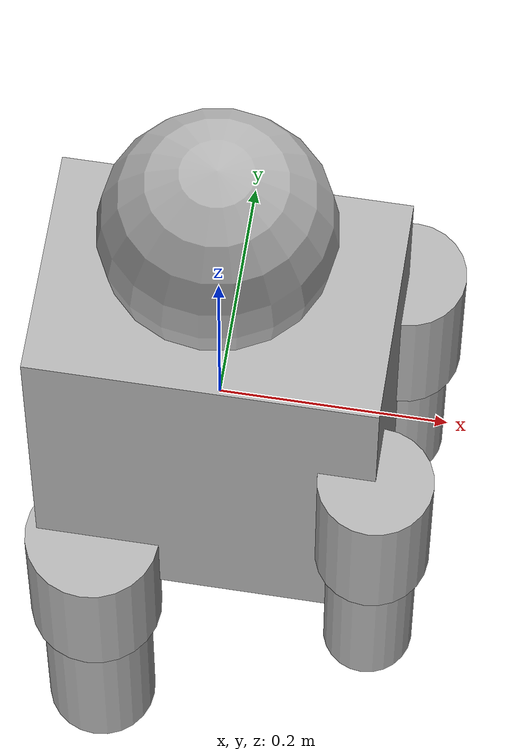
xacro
<?xml version="1.0"?>
<robot xmlns:xacro="http://www.ros.org/wiki/xacro" name="humanoid">

  <xacro:property name="M_PI" value="3.1415926535897931" />

  <!-- Base Link -->
  <link name="base_link">
    <visual>
      <geometry>
        <box size="0.3 0.2 0.4"/>
      </geometry>
      <material name="light_grey">
        <color rgba="0.7 0.7 0.7 1.0"/>
      </material>
    </visual>
    <collision>
      <geometry>
        <box size="0.3 0.2 0.4"/>
      </geometry>
    </collision>
    <inertial>
      <mass value="10.0" />
      <origin xyz="0 0 0" />
      <inertia ixx="0.1" ixy="0.0" ixz="0.0" iyy="0.1" iyz="0.0" izz="0.1" />
    </inertial>
  </link>

  <!-- Head -->
  <link name="head_link">
    <visual>
      <geometry>
        <sphere radius="0.1"/>
      </geometry>
      <material name="light_grey">
        <color rgba="0.7 0.7 0.7 1.0"/>
      </material>
    </visual>
    <collision>
      <geometry>
        <sphere radius="0.1"/>
      </geometry>
    </collision>
    <inertial>
      <mass value="1.0" />
      <origin xyz="0 0 0" />
      <inertia ixx="0.001" ixy="0.0" ixz="0.0" iyy="0.001" iyz="0.0" izz="0.001" />
    </inertial>
  </link>

  <joint name="head_joint" type="fixed">
    <parent link="base_link"/>
    <child link="head_link"/>
    <origin xyz="0 0 0.3" rpy="0 0 0"/>
  </joint>

  <!-- Camera -->
  <link name="camera_link">
    <visual>
      <geometry>
        <box size="0.05 0.1 0.04"/>
      </geometry>
    </visual>
    <collision>
      <geometry>
        <box size="0.05 0.1 0.04"/>
      </geometry>
    </collision>
    <inertial>
      <mass value="0.1" />
      <origin xyz="0 0 0" />
      <inertia ixx="0.001" ixy="0.0" ixz="0.0" iyy="0.001" iyz="0.0" izz="0.001" />
    </inertial>
  </link>

  <joint name="camera_joint" type="fixed">
    <parent link="head_link"/>
    <child link="camera_link"/>
    <origin xyz="0.05 0 0" rpy="0 0 0"/>
  </joint>

  <!-- Left Arm -->
  <link name="left_shoulder_link">
    <visual>
      <geometry>
        <cylinder length="0.15" radius="0.05"/>
      </geometry>
      <material name="light_grey">
        <color rgba="0.7 0.7 0.7 1.0"/>
      </material>
    </visual>
    <collision>
      <geometry>
        <cylinder length="0.15" radius="0.05"/>
      </geometry>
    </collision>
    <inertial>
      <mass value="1.0" />
      <origin xyz="0 0 0" />
      <inertia ixx="0.002" ixy="0.0" ixz="0.0" iyy="0.002" iyz="0.0" izz="0.0005" />
    </inertial>
  </link>

  <joint name="left_shoulder_joint" type="revolute">
    <parent link="base_link"/>
    <child link="left_shoulder_link"/>
    <origin xyz="0.15 0.1 0" rpy="0 0 0"/>
    <axis xyz="0 1 0"/>
    <limit lower="${-M_PI/2}" upper="${M_PI/2}" effort="100" velocity="3.0"/>
  </joint>

  <link name="left_elbow_link">
    <visual>
      <geometry>
        <cylinder length="0.2" radius="0.04"/>
      </geometry>
      <material name="light_grey">
        <color rgba="0.7 0.7 0.7 1.0"/>
      </material>
    </visual>
    <collision>
      <geometry>
        <cylinder length="0.2" radius="0.04"/>
      </geometry>
    </collision>
    <inertial>
      <mass value="0.8" />
      <origin xyz="0 0 0" />
      <inertia ixx="0.0015" ixy="0.0" ixz="0.0" iyy="0.0015" iyz="0.0" izz="0.0003" />
    </inertial>
  </link>

  <joint name="left_elbow_joint" type="revolute">
    <parent link="left_shoulder_link"/>
    <child link="left_elbow_link"/>
    <origin xyz="0 0 -0.15" rpy="0 0 0"/>
    <axis xyz="1 0 0"/>
    <limit lower="${-M_PI/2}" upper="${M_PI/2}" effort="100" velocity="3.0"/>
  </joint>

  <!-- Right Arm -->
  <link name="right_shoulder_link">
    <visual>
      <geometry>
        <cylinder length="0.15" radius="0.05"/>
      </geometry>
      <material name="light_grey">
        <color rgba="0.7 0.7 0.7 1.0"/>
      </material>
    </visual>
    <collision>
      <geometry>
        <cylinder length="0.15" radius="0.05"/>
      </geometry>
    </collision>
    <inertial>
      <mass value="1.0" />
      <origin xyz="0 0 0" />
      <inertia ixx="0.002" ixy="0.0" ixz="0.0" iyy="0.002" iyz="0.0" izz="0.0005" />
    </inertial>
  </link>

  <joint name="right_shoulder_joint" type="revolute">
    <parent link="base_link"/>
    <child link="right_shoulder_link"/>
    <origin xyz="0.15 -0.1 0" rpy="0 0 0"/>
    <axis xyz="0 1 0"/>
    <limit lower="${-M_PI/2}" upper="${M_PI/2}" effort="100" velocity="3.0"/>
  </joint>

  <link name="right_elbow_link">
    <visual>
      <geometry>
        <cylinder length="0.2" radius="0.04"/>
      </geometry>
      <material name="light_grey">
        <color rgba="0.7 0.7 0.7 1.0"/>
      </material>
    </visual>
    <collision>
      <geometry>
        <cylinder length="0.2" radius="0.04"/>
      </geometry>
    </collision>
    <inertial>
      <mass value="0.8" />
      <origin xyz="0 0 0" />
      <inertia ixx="0.0015" ixy="0.0" ixz="0.0" iyy="0.0015" iyz="0.0" izz="0.0003" />
    </inertial>
  </link>

  <joint name="right_elbow_joint" type="revolute">
    <parent link="right_shoulder_link"/>
    <child link="right_elbow_link"/>
    <origin xyz="0 0 -0.15" rpy="0 0 0"/>
    <axis xyz="1 0 0"/>
    <limit lower="${-M_PI/2}" upper="${M_PI/2}" effort="100" velocity="3.0"/>
  </joint>

  <!-- Left Leg -->
  <link name="left_hip_link">
    <visual>
      <geometry>
        <cylinder length="0.15" radius="0.06"/>
      </geometry>
      <material name="light_grey">
        <color rgba="0.7 0.7 0.7 1.0"/>
      </material>
    </visual>
    <collision>
      <geometry>
        <cylinder length="0.15" radius="0.06"/>
      </geometry>
    </collision>
    <inertial>
      <mass value="1.5" />
      <origin xyz="0 0 0" />
      <inertia ixx="0.003" ixy="0.0" ixz="0.0" iyy="0.003" iyz="0.0" izz="0.0008" />
    </inertial>
  </link>

  <joint name="left_hip_joint" type="revolute">
    <parent link="base_link"/>
    <child link="left_hip_link"/>
    <origin xyz="-0.1 0.1 -0.2" rpy="0 0 0"/>
    <axis xyz="0 1 0"/>
    <limit lower="${-M_PI/2}" upper="${M_PI/2}" effort="100" velocity="3.0"/>
  </joint>

  <link name="left_knee_link">
    <visual>
      <geometry>
        <cylinder length="0.25" radius="0.05"/>
      </geometry>
      <material name="light_grey">
        <color rgba="0.7 0.7 0.7 1.0"/>
      </material>
    </visual>
    <collision>
      <geometry>
        <cylinder length="0.25" radius="0.05"/>
      </geometry>
    </collision>
    <inertial>
      <mass value="1.2" />
      <origin xyz="0 0 0" />
      <inertia ixx="0.003" ixy="0.0" ixz="0.0" iyy="0.003" iyz="0.0" izz="0.0005" />
    </inertial>
  </link>

  <joint name="left_knee_joint" type="revolute">
    <parent link="left_hip_link"/>
    <child link="left_knee_link"/>
    <origin xyz="0 0 -0.15" rpy="0 0 0"/>
    <axis xyz="1 0 0"/>
    <limit lower="${0}" upper="${M_PI/2}" effort="100" velocity="3.0"/>
  </joint>

  <!-- Right Leg -->
  <link name="right_hip_link">
    <visual>
      <geometry>
        <cylinder length="0.15" radius="0.06"/>
      </geometry>
      <material name="light_grey">
        <color rgba="0.7 0.7 0.7 1.0"/>
      </material>
    </visual>
    <collision>
      <geometry>
        <cylinder length="0.15" radius="0.06"/>
      </geometry>
    </collision>
    <inertial>
      <mass value="1.5" />
      <origin xyz="0 0 0" />
      <inertia ixx="0.003" ixy="0.0" ixz="0.0" iyy="0.003" iyz="0.0" izz="0.0008" />
    </inertial>
  </link>

  <joint name="right_hip_joint" type="revolute">
    <parent link="base_link"/>
    <child link="right_hip_link"/>
    <origin xyz="-0.1 -0.1 -0.2" rpy="0 0 0"/>
    <axis xyz="0 1 0"/>
    <limit lower="${-M_PI/2}" upper="${M_PI/2}" effort="100" velocity="3.0"/>
  </joint>

  <link name="right_knee_link">
    <visual>
      <geometry>
        <cylinder length="0.25" radius="0.05"/>
      </geometry>
      <material name="light_grey">
        <color rgba="0.7 0.7 0.7 1.0"/>
      </material>
    </visual>
    <collision>
      <geometry>
        <cylinder length="0.25" radius="0.05"/>
      </geometry>
    </collision>
    <inertial>
      <mass value="1.2" />
      <origin xyz="0 0 0" />
      <inertia ixx="0.003" ixy="0.0" ixz="0.0" iyy="0.003" iyz="0.0" izz="0.0005" />
    </inertial>
  </link>

  <joint name="right_knee_joint" type="revolute">
    <parent link="right_hip_link"/>
    <child link="right_knee_link"/>
    <origin xyz="0 0 -0.15" rpy="0 0 0"/>
    <axis xyz="1 0 0"/>
    <limit lower="${0}" upper="${M_PI/2}" effort="100" velocity="3.0"/>
  </joint>

  <!-- Gazebo plugin for ros_control -->
  <gazebo>
    <plugin name="gazebo_ros_control" filename="libgazebo_ros_control.so">
      <parameters>$(find ros2_control)/ros2_controllers_config.yaml</parameters>
    </plugin>
  </gazebo>

  <!-- Gazebo materials -->
  <gazebo reference="base_link">
    <material>Gazebo/Grey</material>
  </gazebo>

  <gazebo reference="head_link">
    <material>Gazebo/Grey</material>
  </gazebo>

  <gazebo reference="left_shoulder_link">
    <material>Gazebo/Grey</material>
  </gazebo>

  <gazebo reference="left_elbow_link">
    <material>Gazebo/Grey</material>
  </gazebo>

  <gazebo reference="right_shoulder_link">
    <material>Gazebo/Grey</material>
  </gazebo>

  <gazebo reference="right_elbow_link">
    <material>Gazebo/Grey</material>
  </gazebo>

  <gazebo reference="left_hip_link">
    <material>Gazebo/Grey</material>
  </gazebo>

  <gazebo reference="left_knee_link">
    <material>Gazebo/Grey</material>
  </gazebo>

  <gazebo reference="right_hip_link">
    <material>Gazebo/Grey</material>
  </gazebo>

  <gazebo reference="right_knee_link">
    <material>Gazebo/Grey</material>
  </gazebo>

  <!-- Camera plugin -->
  <gazebo reference="camera_link">
    <sensor type="camera" name="camera_sensor">
      <update_rate>30</update_rate>
      <camera name="head_camera">
        <horizontal_fov>1.047</horizontal_fov>
        <image>
          <width>640</width>
          <height>480</height>
          <format>R8G8B8</format>
        </image>
        <clip>
          <near>0.1</near>
          <far>100</far>
        </clip>
      </camera>
      <plugin name="camera_controller" filename="libgazebo_ros_camera.so">
        <frame_name>camera_link</frame_name>
      </plugin>
    </sensor>
  </gazebo>

</robot>
